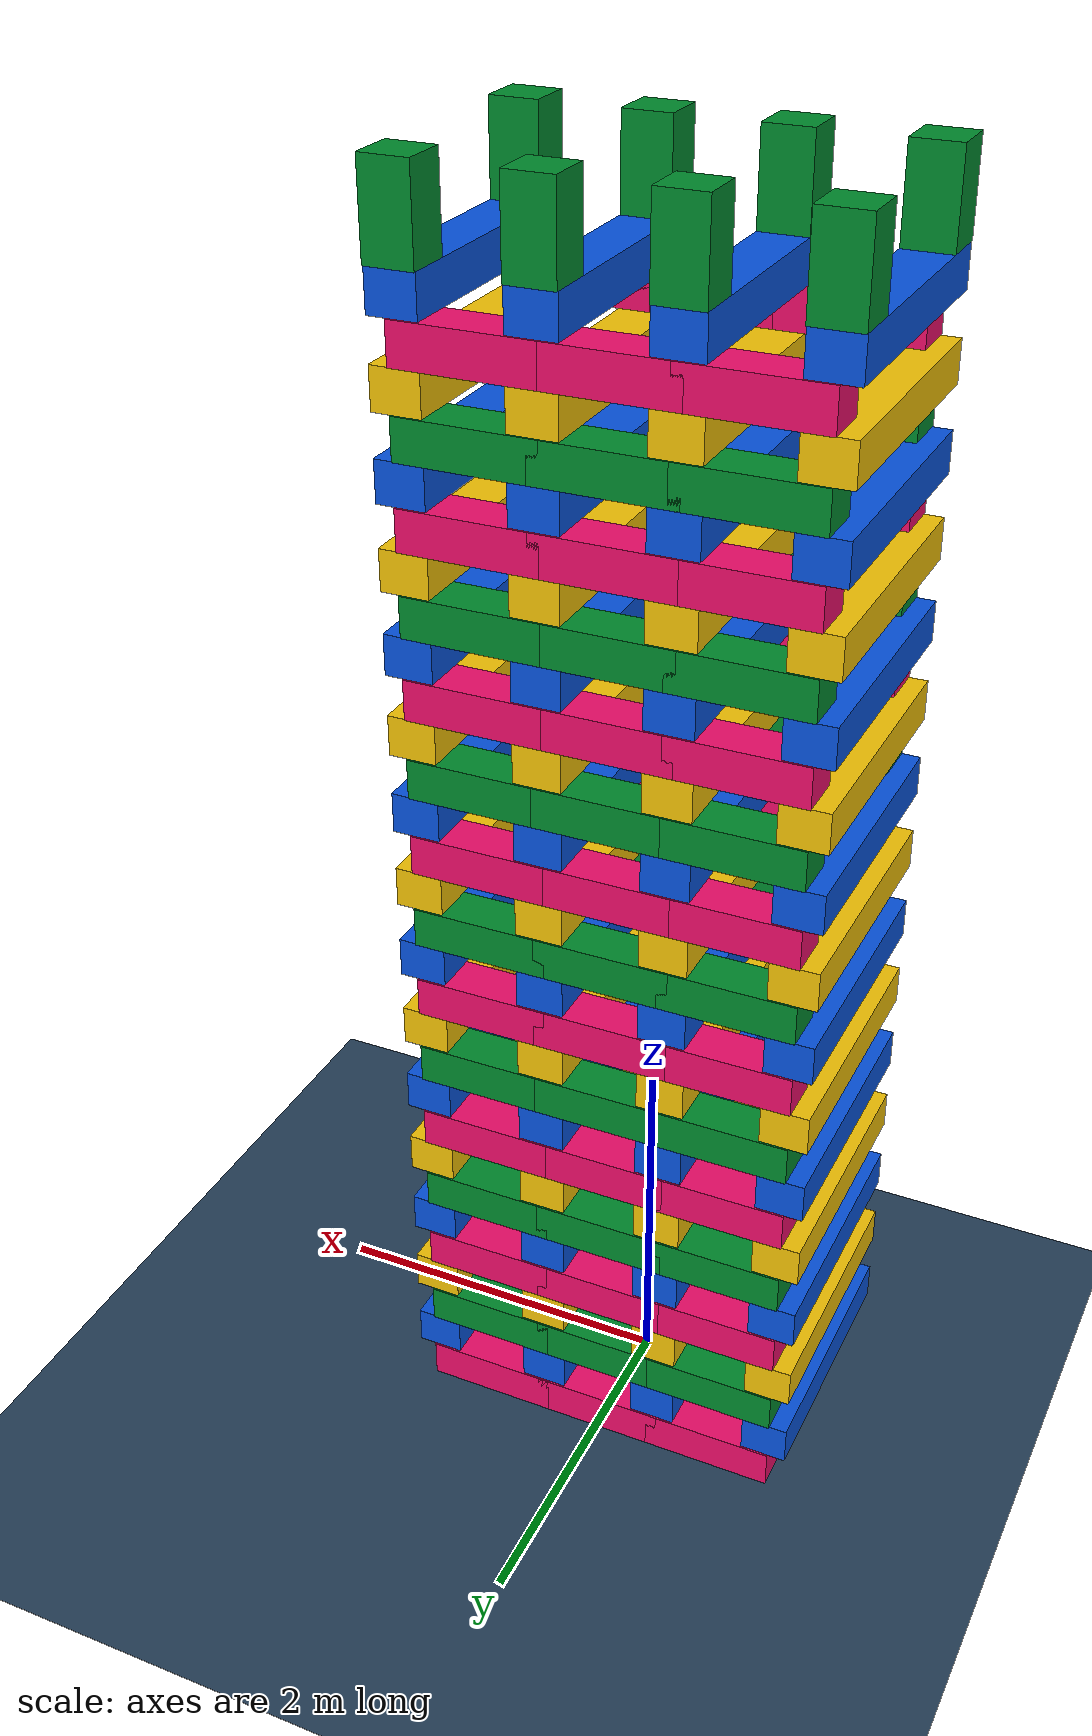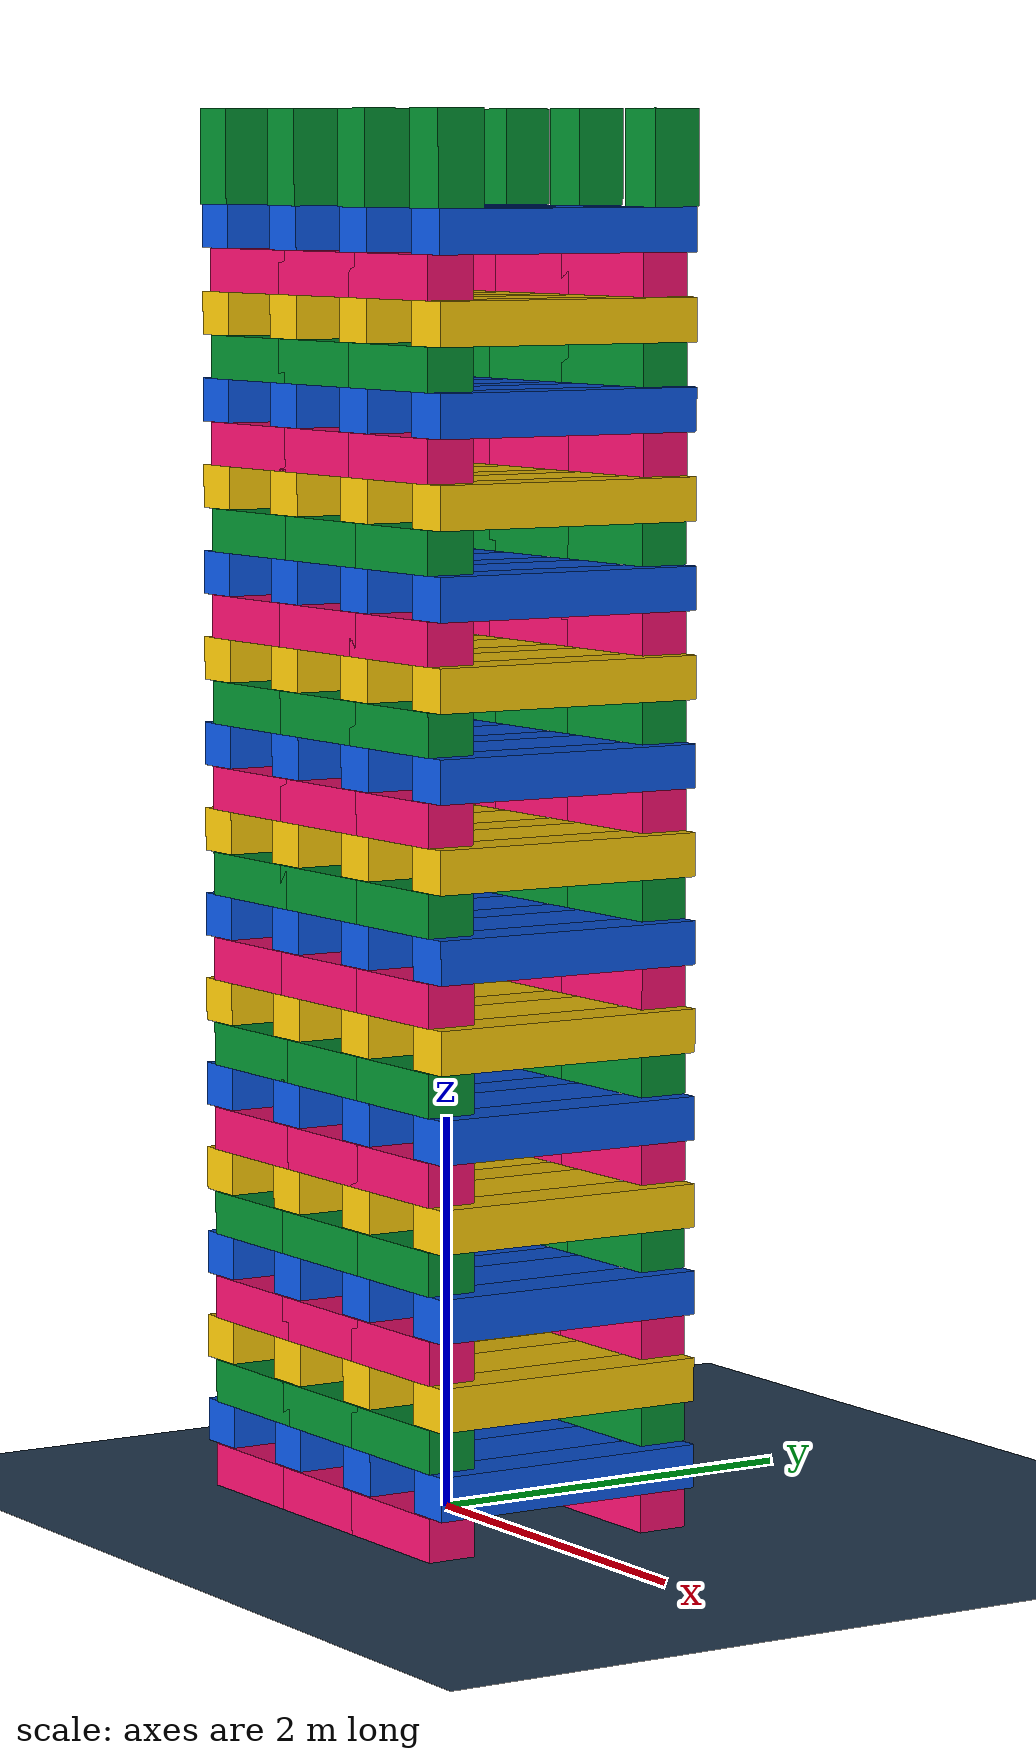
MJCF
<mujoco>
  <visual>
    <headlight diffuse="0.7 0.7 0.7" ambient="0.15 0.15 0.15" specular="0 0 0"/>
    <rgba haze="0.12 0.18 0.25 1"/>
    <global azimuth="132" elevation="-16"/>
  </visual>
  <asset>
    <texture type="skybox" builtin="gradient" rgb1="0.3 0.5 0.7" rgb2="0 0 0" width="512" height="3072"/>
    <texture type="2d" name="groundplane" builtin="checker" mark="edge" rgb1="0.2 0.3 0.4" rgb2="0.1 0.2 0.3" markrgb="0.8 0.8 0.8" width="300" height="300"/>
    <material name="groundplane" texture="groundplane" texuniform="true" texrepeat="5 5" reflectance="0.2"/>
  </asset>
  <worldbody>
    <light pos="0 0 1.5" dir="0 0 -1" directional="true"/>
    <geom name="floor" size="0 0 0.05" type="plane" material="groundplane"/>
    <body pos="-0.6800 -0.6200 0.1100" euler="0 0 0">
      <geom type="box" size="0.3700 0.1300 0.1100" rgba="0.940 0.050 0.420 1"/>
      <freejoint/>
    </body>
    <body pos="0.0000 -0.6200 0.1100" euler="0 0 0">
      <geom type="box" size="0.3700 0.1300 0.1100" rgba="0.940 0.050 0.420 1"/>
      <freejoint/>
    </body>
    <body pos="0.6800 -0.6200 0.1100" euler="0 0 0">
      <geom type="box" size="0.3700 0.1300 0.1100" rgba="0.940 0.050 0.420 1"/>
      <freejoint/>
    </body>
    <body pos="-0.6800 0.6200 0.1100" euler="0 0 0">
      <geom type="box" size="0.3700 0.1300 0.1100" rgba="0.940 0.050 0.420 1"/>
      <freejoint/>
    </body>
    <body pos="0.0000 0.6200 0.1100" euler="0 0 0">
      <geom type="box" size="0.3700 0.1300 0.1100" rgba="0.940 0.050 0.420 1"/>
      <freejoint/>
    </body>
    <body pos="0.6800 0.6200 0.1100" euler="0 0 0">
      <geom type="box" size="0.3700 0.1300 0.1100" rgba="0.940 0.050 0.420 1"/>
      <freejoint/>
    </body>
    <body pos="-1.0200 0.0000 0.3300" euler="0 0 0">
      <geom type="box" size="0.1300 0.7400 0.1100" rgba="0.030 0.330 0.880 1"/>
      <freejoint/>
    </body>
    <body pos="-0.3400 0.0000 0.3300" euler="0 0 0">
      <geom type="box" size="0.1300 0.7400 0.1100" rgba="0.030 0.330 0.880 1"/>
      <freejoint/>
    </body>
    <body pos="0.3400 0.0000 0.3300" euler="0 0 0">
      <geom type="box" size="0.1300 0.7400 0.1100" rgba="0.030 0.330 0.880 1"/>
      <freejoint/>
    </body>
    <body pos="1.0200 0.0000 0.3300" euler="0 0 0">
      <geom type="box" size="0.1300 0.7400 0.1100" rgba="0.030 0.330 0.880 1"/>
      <freejoint/>
    </body>
    <body pos="-0.6800 -0.6200 0.5500" euler="0 0 0">
      <geom type="box" size="0.3700 0.1300 0.1100" rgba="0.000 0.550 0.180 1"/>
      <freejoint/>
    </body>
    <body pos="0.0000 -0.6200 0.5500" euler="0 0 0">
      <geom type="box" size="0.3700 0.1300 0.1100" rgba="0.000 0.550 0.180 1"/>
      <freejoint/>
    </body>
    <body pos="0.6800 -0.6200 0.5500" euler="0 0 0">
      <geom type="box" size="0.3700 0.1300 0.1100" rgba="0.000 0.550 0.180 1"/>
      <freejoint/>
    </body>
    <body pos="-0.6800 0.6200 0.5500" euler="0 0 0">
      <geom type="box" size="0.3700 0.1300 0.1100" rgba="0.000 0.550 0.180 1"/>
      <freejoint/>
    </body>
    <body pos="0.0000 0.6200 0.5500" euler="0 0 0">
      <geom type="box" size="0.3700 0.1300 0.1100" rgba="0.000 0.550 0.180 1"/>
      <freejoint/>
    </body>
    <body pos="0.6800 0.6200 0.5500" euler="0 0 0">
      <geom type="box" size="0.3700 0.1300 0.1100" rgba="0.000 0.550 0.180 1"/>
      <freejoint/>
    </body>
    <body pos="-1.0200 0.0000 0.7700" euler="0 0 0">
      <geom type="box" size="0.1300 0.7400 0.1100" rgba="0.960 0.770 0.020 1"/>
      <freejoint/>
    </body>
    <body pos="-0.3400 0.0000 0.7700" euler="0 0 0">
      <geom type="box" size="0.1300 0.7400 0.1100" rgba="0.960 0.770 0.020 1"/>
      <freejoint/>
    </body>
    <body pos="0.3400 0.0000 0.7700" euler="0 0 0">
      <geom type="box" size="0.1300 0.7400 0.1100" rgba="0.960 0.770 0.020 1"/>
      <freejoint/>
    </body>
    <body pos="1.0200 0.0000 0.7700" euler="0 0 0">
      <geom type="box" size="0.1300 0.7400 0.1100" rgba="0.960 0.770 0.020 1"/>
      <freejoint/>
    </body>
    <body pos="-0.6800 -0.6200 0.9900" euler="0 0 0">
      <geom type="box" size="0.3700 0.1300 0.1100" rgba="0.940 0.050 0.420 1"/>
      <freejoint/>
    </body>
    <body pos="0.0000 -0.6200 0.9900" euler="0 0 0">
      <geom type="box" size="0.3700 0.1300 0.1100" rgba="0.940 0.050 0.420 1"/>
      <freejoint/>
    </body>
    <body pos="0.6800 -0.6200 0.9900" euler="0 0 0">
      <geom type="box" size="0.3700 0.1300 0.1100" rgba="0.940 0.050 0.420 1"/>
      <freejoint/>
    </body>
    <body pos="-0.6800 0.6200 0.9900" euler="0 0 0">
      <geom type="box" size="0.3700 0.1300 0.1100" rgba="0.940 0.050 0.420 1"/>
      <freejoint/>
    </body>
    <body pos="0.0000 0.6200 0.9900" euler="0 0 0">
      <geom type="box" size="0.3700 0.1300 0.1100" rgba="0.940 0.050 0.420 1"/>
      <freejoint/>
    </body>
    <body pos="0.6800 0.6200 0.9900" euler="0 0 0">
      <geom type="box" size="0.3700 0.1300 0.1100" rgba="0.940 0.050 0.420 1"/>
      <freejoint/>
    </body>
    <body pos="-1.0200 0.0000 1.2100" euler="0 0 0">
      <geom type="box" size="0.1300 0.7400 0.1100" rgba="0.030 0.330 0.880 1"/>
      <freejoint/>
    </body>
    <body pos="-0.3400 0.0000 1.2100" euler="0 0 0">
      <geom type="box" size="0.1300 0.7400 0.1100" rgba="0.030 0.330 0.880 1"/>
      <freejoint/>
    </body>
    <body pos="0.3400 0.0000 1.2100" euler="0 0 0">
      <geom type="box" size="0.1300 0.7400 0.1100" rgba="0.030 0.330 0.880 1"/>
      <freejoint/>
    </body>
    <body pos="1.0200 0.0000 1.2100" euler="0 0 0">
      <geom type="box" size="0.1300 0.7400 0.1100" rgba="0.030 0.330 0.880 1"/>
      <freejoint/>
    </body>
    <body pos="-0.6800 -0.6200 1.4300" euler="0 0 0">
      <geom type="box" size="0.3700 0.1300 0.1100" rgba="0.000 0.550 0.180 1"/>
      <freejoint/>
    </body>
    <body pos="0.0000 -0.6200 1.4300" euler="0 0 0">
      <geom type="box" size="0.3700 0.1300 0.1100" rgba="0.000 0.550 0.180 1"/>
      <freejoint/>
    </body>
    <body pos="0.6800 -0.6200 1.4300" euler="0 0 0">
      <geom type="box" size="0.3700 0.1300 0.1100" rgba="0.000 0.550 0.180 1"/>
      <freejoint/>
    </body>
    <body pos="-0.6800 0.6200 1.4300" euler="0 0 0">
      <geom type="box" size="0.3700 0.1300 0.1100" rgba="0.000 0.550 0.180 1"/>
      <freejoint/>
    </body>
    <body pos="0.0000 0.6200 1.4300" euler="0 0 0">
      <geom type="box" size="0.3700 0.1300 0.1100" rgba="0.000 0.550 0.180 1"/>
      <freejoint/>
    </body>
    <body pos="0.6800 0.6200 1.4300" euler="0 0 0">
      <geom type="box" size="0.3700 0.1300 0.1100" rgba="0.000 0.550 0.180 1"/>
      <freejoint/>
    </body>
    <body pos="-1.0200 0.0000 1.6500" euler="0 0 0">
      <geom type="box" size="0.1300 0.7400 0.1100" rgba="0.960 0.770 0.020 1"/>
      <freejoint/>
    </body>
    <body pos="-0.3400 0.0000 1.6500" euler="0 0 0">
      <geom type="box" size="0.1300 0.7400 0.1100" rgba="0.960 0.770 0.020 1"/>
      <freejoint/>
    </body>
    <body pos="0.3400 0.0000 1.6500" euler="0 0 0">
      <geom type="box" size="0.1300 0.7400 0.1100" rgba="0.960 0.770 0.020 1"/>
      <freejoint/>
    </body>
    <body pos="1.0200 0.0000 1.6500" euler="0 0 0">
      <geom type="box" size="0.1300 0.7400 0.1100" rgba="0.960 0.770 0.020 1"/>
      <freejoint/>
    </body>
    <body pos="-0.6800 -0.6200 1.8700" euler="0 0 0">
      <geom type="box" size="0.3700 0.1300 0.1100" rgba="0.940 0.050 0.420 1"/>
      <freejoint/>
    </body>
    <body pos="0.0000 -0.6200 1.8700" euler="0 0 0">
      <geom type="box" size="0.3700 0.1300 0.1100" rgba="0.940 0.050 0.420 1"/>
      <freejoint/>
    </body>
    <body pos="0.6800 -0.6200 1.8700" euler="0 0 0">
      <geom type="box" size="0.3700 0.1300 0.1100" rgba="0.940 0.050 0.420 1"/>
      <freejoint/>
    </body>
    <body pos="-0.6800 0.6200 1.8700" euler="0 0 0">
      <geom type="box" size="0.3700 0.1300 0.1100" rgba="0.940 0.050 0.420 1"/>
      <freejoint/>
    </body>
    <body pos="0.0000 0.6200 1.8700" euler="0 0 0">
      <geom type="box" size="0.3700 0.1300 0.1100" rgba="0.940 0.050 0.420 1"/>
      <freejoint/>
    </body>
    <body pos="0.6800 0.6200 1.8700" euler="0 0 0">
      <geom type="box" size="0.3700 0.1300 0.1100" rgba="0.940 0.050 0.420 1"/>
      <freejoint/>
    </body>
    <body pos="-1.0200 0.0000 2.0900" euler="0 0 0">
      <geom type="box" size="0.1300 0.7400 0.1100" rgba="0.030 0.330 0.880 1"/>
      <freejoint/>
    </body>
    <body pos="-0.3400 0.0000 2.0900" euler="0 0 0">
      <geom type="box" size="0.1300 0.7400 0.1100" rgba="0.030 0.330 0.880 1"/>
      <freejoint/>
    </body>
    <body pos="0.3400 0.0000 2.0900" euler="0 0 0">
      <geom type="box" size="0.1300 0.7400 0.1100" rgba="0.030 0.330 0.880 1"/>
      <freejoint/>
    </body>
    <body pos="1.0200 0.0000 2.0900" euler="0 0 0">
      <geom type="box" size="0.1300 0.7400 0.1100" rgba="0.030 0.330 0.880 1"/>
      <freejoint/>
    </body>
    <body pos="-0.6800 -0.6200 2.3100" euler="0 0 0">
      <geom type="box" size="0.3700 0.1300 0.1100" rgba="0.000 0.550 0.180 1"/>
      <freejoint/>
    </body>
    <body pos="0.0000 -0.6200 2.3100" euler="0 0 0">
      <geom type="box" size="0.3700 0.1300 0.1100" rgba="0.000 0.550 0.180 1"/>
      <freejoint/>
    </body>
    <body pos="0.6800 -0.6200 2.3100" euler="0 0 0">
      <geom type="box" size="0.3700 0.1300 0.1100" rgba="0.000 0.550 0.180 1"/>
      <freejoint/>
    </body>
    <body pos="-0.6800 0.6200 2.3100" euler="0 0 0">
      <geom type="box" size="0.3700 0.1300 0.1100" rgba="0.000 0.550 0.180 1"/>
      <freejoint/>
    </body>
    <body pos="0.0000 0.6200 2.3100" euler="0 0 0">
      <geom type="box" size="0.3700 0.1300 0.1100" rgba="0.000 0.550 0.180 1"/>
      <freejoint/>
    </body>
    <body pos="0.6800 0.6200 2.3100" euler="0 0 0">
      <geom type="box" size="0.3700 0.1300 0.1100" rgba="0.000 0.550 0.180 1"/>
      <freejoint/>
    </body>
    <body pos="-1.0200 0.0000 2.5300" euler="0 0 0">
      <geom type="box" size="0.1300 0.7400 0.1100" rgba="0.960 0.770 0.020 1"/>
      <freejoint/>
    </body>
    <body pos="-0.3400 0.0000 2.5300" euler="0 0 0">
      <geom type="box" size="0.1300 0.7400 0.1100" rgba="0.960 0.770 0.020 1"/>
      <freejoint/>
    </body>
    <body pos="0.3400 0.0000 2.5300" euler="0 0 0">
      <geom type="box" size="0.1300 0.7400 0.1100" rgba="0.960 0.770 0.020 1"/>
      <freejoint/>
    </body>
    <body pos="1.0200 0.0000 2.5300" euler="0 0 0">
      <geom type="box" size="0.1300 0.7400 0.1100" rgba="0.960 0.770 0.020 1"/>
      <freejoint/>
    </body>
    <body pos="-0.6800 -0.6200 2.7500" euler="0 0 0">
      <geom type="box" size="0.3700 0.1300 0.1100" rgba="0.940 0.050 0.420 1"/>
      <freejoint/>
    </body>
    <body pos="0.0000 -0.6200 2.7500" euler="0 0 0">
      <geom type="box" size="0.3700 0.1300 0.1100" rgba="0.940 0.050 0.420 1"/>
      <freejoint/>
    </body>
    <body pos="0.6800 -0.6200 2.7500" euler="0 0 0">
      <geom type="box" size="0.3700 0.1300 0.1100" rgba="0.940 0.050 0.420 1"/>
      <freejoint/>
    </body>
    <body pos="-0.6800 0.6200 2.7500" euler="0 0 0">
      <geom type="box" size="0.3700 0.1300 0.1100" rgba="0.940 0.050 0.420 1"/>
      <freejoint/>
    </body>
    <body pos="0.0000 0.6200 2.7500" euler="0 0 0">
      <geom type="box" size="0.3700 0.1300 0.1100" rgba="0.940 0.050 0.420 1"/>
      <freejoint/>
    </body>
    <body pos="0.6800 0.6200 2.7500" euler="0 0 0">
      <geom type="box" size="0.3700 0.1300 0.1100" rgba="0.940 0.050 0.420 1"/>
      <freejoint/>
    </body>
    <body pos="-1.0200 0.0000 2.9700" euler="0 0 0">
      <geom type="box" size="0.1300 0.7400 0.1100" rgba="0.030 0.330 0.880 1"/>
      <freejoint/>
    </body>
    <body pos="-0.3400 0.0000 2.9700" euler="0 0 0">
      <geom type="box" size="0.1300 0.7400 0.1100" rgba="0.030 0.330 0.880 1"/>
      <freejoint/>
    </body>
    <body pos="0.3400 0.0000 2.9700" euler="0 0 0">
      <geom type="box" size="0.1300 0.7400 0.1100" rgba="0.030 0.330 0.880 1"/>
      <freejoint/>
    </body>
    <body pos="1.0200 0.0000 2.9700" euler="0 0 0">
      <geom type="box" size="0.1300 0.7400 0.1100" rgba="0.030 0.330 0.880 1"/>
      <freejoint/>
    </body>
    <body pos="-0.6800 -0.6200 3.1900" euler="0 0 0">
      <geom type="box" size="0.3700 0.1300 0.1100" rgba="0.000 0.550 0.180 1"/>
      <freejoint/>
    </body>
    <body pos="0.0000 -0.6200 3.1900" euler="0 0 0">
      <geom type="box" size="0.3700 0.1300 0.1100" rgba="0.000 0.550 0.180 1"/>
      <freejoint/>
    </body>
    <body pos="0.6800 -0.6200 3.1900" euler="0 0 0">
      <geom type="box" size="0.3700 0.1300 0.1100" rgba="0.000 0.550 0.180 1"/>
      <freejoint/>
    </body>
    <body pos="-0.6800 0.6200 3.1900" euler="0 0 0">
      <geom type="box" size="0.3700 0.1300 0.1100" rgba="0.000 0.550 0.180 1"/>
      <freejoint/>
    </body>
    <body pos="0.0000 0.6200 3.1900" euler="0 0 0">
      <geom type="box" size="0.3700 0.1300 0.1100" rgba="0.000 0.550 0.180 1"/>
      <freejoint/>
    </body>
    <body pos="0.6800 0.6200 3.1900" euler="0 0 0">
      <geom type="box" size="0.3700 0.1300 0.1100" rgba="0.000 0.550 0.180 1"/>
      <freejoint/>
    </body>
    <body pos="-1.0200 0.0000 3.4100" euler="0 0 0">
      <geom type="box" size="0.1300 0.7400 0.1100" rgba="0.960 0.770 0.020 1"/>
      <freejoint/>
    </body>
    <body pos="-0.3400 0.0000 3.4100" euler="0 0 0">
      <geom type="box" size="0.1300 0.7400 0.1100" rgba="0.960 0.770 0.020 1"/>
      <freejoint/>
    </body>
    <body pos="0.3400 0.0000 3.4100" euler="0 0 0">
      <geom type="box" size="0.1300 0.7400 0.1100" rgba="0.960 0.770 0.020 1"/>
      <freejoint/>
    </body>
    <body pos="1.0200 0.0000 3.4100" euler="0 0 0">
      <geom type="box" size="0.1300 0.7400 0.1100" rgba="0.960 0.770 0.020 1"/>
      <freejoint/>
    </body>
    <body pos="-0.6800 -0.6200 3.6300" euler="0 0 0">
      <geom type="box" size="0.3700 0.1300 0.1100" rgba="0.940 0.050 0.420 1"/>
      <freejoint/>
    </body>
    <body pos="0.0000 -0.6200 3.6300" euler="0 0 0">
      <geom type="box" size="0.3700 0.1300 0.1100" rgba="0.940 0.050 0.420 1"/>
      <freejoint/>
    </body>
    <body pos="0.6800 -0.6200 3.6300" euler="0 0 0">
      <geom type="box" size="0.3700 0.1300 0.1100" rgba="0.940 0.050 0.420 1"/>
      <freejoint/>
    </body>
    <body pos="-0.6800 0.6200 3.6300" euler="0 0 0">
      <geom type="box" size="0.3700 0.1300 0.1100" rgba="0.940 0.050 0.420 1"/>
      <freejoint/>
    </body>
    <body pos="0.0000 0.6200 3.6300" euler="0 0 0">
      <geom type="box" size="0.3700 0.1300 0.1100" rgba="0.940 0.050 0.420 1"/>
      <freejoint/>
    </body>
    <body pos="0.6800 0.6200 3.6300" euler="0 0 0">
      <geom type="box" size="0.3700 0.1300 0.1100" rgba="0.940 0.050 0.420 1"/>
      <freejoint/>
    </body>
    <body pos="-1.0200 0.0000 3.8500" euler="0 0 0">
      <geom type="box" size="0.1300 0.7400 0.1100" rgba="0.030 0.330 0.880 1"/>
      <freejoint/>
    </body>
    <body pos="-0.3400 0.0000 3.8500" euler="0 0 0">
      <geom type="box" size="0.1300 0.7400 0.1100" rgba="0.030 0.330 0.880 1"/>
      <freejoint/>
    </body>
    <body pos="0.3400 0.0000 3.8500" euler="0 0 0">
      <geom type="box" size="0.1300 0.7400 0.1100" rgba="0.030 0.330 0.880 1"/>
      <freejoint/>
    </body>
    <body pos="1.0200 0.0000 3.8500" euler="0 0 0">
      <geom type="box" size="0.1300 0.7400 0.1100" rgba="0.030 0.330 0.880 1"/>
      <freejoint/>
    </body>
    <body pos="-0.6800 -0.6200 4.0700" euler="0 0 0">
      <geom type="box" size="0.3700 0.1300 0.1100" rgba="0.000 0.550 0.180 1"/>
      <freejoint/>
    </body>
    <body pos="0.0000 -0.6200 4.0700" euler="0 0 0">
      <geom type="box" size="0.3700 0.1300 0.1100" rgba="0.000 0.550 0.180 1"/>
      <freejoint/>
    </body>
    <body pos="0.6800 -0.6200 4.0700" euler="0 0 0">
      <geom type="box" size="0.3700 0.1300 0.1100" rgba="0.000 0.550 0.180 1"/>
      <freejoint/>
    </body>
    <body pos="-0.6800 0.6200 4.0700" euler="0 0 0">
      <geom type="box" size="0.3700 0.1300 0.1100" rgba="0.000 0.550 0.180 1"/>
      <freejoint/>
    </body>
    <body pos="0.0000 0.6200 4.0700" euler="0 0 0">
      <geom type="box" size="0.3700 0.1300 0.1100" rgba="0.000 0.550 0.180 1"/>
      <freejoint/>
    </body>
    <body pos="0.6800 0.6200 4.0700" euler="0 0 0">
      <geom type="box" size="0.3700 0.1300 0.1100" rgba="0.000 0.550 0.180 1"/>
      <freejoint/>
    </body>
    <body pos="-1.0200 0.0000 4.2900" euler="0 0 0">
      <geom type="box" size="0.1300 0.7400 0.1100" rgba="0.960 0.770 0.020 1"/>
      <freejoint/>
    </body>
    <body pos="-0.3400 0.0000 4.2900" euler="0 0 0">
      <geom type="box" size="0.1300 0.7400 0.1100" rgba="0.960 0.770 0.020 1"/>
      <freejoint/>
    </body>
    <body pos="0.3400 0.0000 4.2900" euler="0 0 0">
      <geom type="box" size="0.1300 0.7400 0.1100" rgba="0.960 0.770 0.020 1"/>
      <freejoint/>
    </body>
    <body pos="1.0200 0.0000 4.2900" euler="0 0 0">
      <geom type="box" size="0.1300 0.7400 0.1100" rgba="0.960 0.770 0.020 1"/>
      <freejoint/>
    </body>
    <body pos="-0.6800 -0.6200 4.5100" euler="0 0 0">
      <geom type="box" size="0.3700 0.1300 0.1100" rgba="0.940 0.050 0.420 1"/>
      <freejoint/>
    </body>
    <body pos="0.0000 -0.6200 4.5100" euler="0 0 0">
      <geom type="box" size="0.3700 0.1300 0.1100" rgba="0.940 0.050 0.420 1"/>
      <freejoint/>
    </body>
    <body pos="0.6800 -0.6200 4.5100" euler="0 0 0">
      <geom type="box" size="0.3700 0.1300 0.1100" rgba="0.940 0.050 0.420 1"/>
      <freejoint/>
    </body>
    <body pos="-0.6800 0.6200 4.5100" euler="0 0 0">
      <geom type="box" size="0.3700 0.1300 0.1100" rgba="0.940 0.050 0.420 1"/>
      <freejoint/>
    </body>
    <body pos="0.0000 0.6200 4.5100" euler="0 0 0">
      <geom type="box" size="0.3700 0.1300 0.1100" rgba="0.940 0.050 0.420 1"/>
      <freejoint/>
    </body>
    <body pos="0.6800 0.6200 4.5100" euler="0 0 0">
      <geom type="box" size="0.3700 0.1300 0.1100" rgba="0.940 0.050 0.420 1"/>
      <freejoint/>
    </body>
    <body pos="-1.0200 0.0000 4.7300" euler="0 0 0">
      <geom type="box" size="0.1300 0.7400 0.1100" rgba="0.030 0.330 0.880 1"/>
      <freejoint/>
    </body>
    <body pos="-0.3400 0.0000 4.7300" euler="0 0 0">
      <geom type="box" size="0.1300 0.7400 0.1100" rgba="0.030 0.330 0.880 1"/>
      <freejoint/>
    </body>
    <body pos="0.3400 0.0000 4.7300" euler="0 0 0">
      <geom type="box" size="0.1300 0.7400 0.1100" rgba="0.030 0.330 0.880 1"/>
      <freejoint/>
    </body>
    <body pos="1.0200 0.0000 4.7300" euler="0 0 0">
      <geom type="box" size="0.1300 0.7400 0.1100" rgba="0.030 0.330 0.880 1"/>
      <freejoint/>
    </body>
    <body pos="-0.6800 -0.6200 4.9500" euler="0 0 0">
      <geom type="box" size="0.3700 0.1300 0.1100" rgba="0.000 0.550 0.180 1"/>
      <freejoint/>
    </body>
    <body pos="0.0000 -0.6200 4.9500" euler="0 0 0">
      <geom type="box" size="0.3700 0.1300 0.1100" rgba="0.000 0.550 0.180 1"/>
      <freejoint/>
    </body>
    <body pos="0.6800 -0.6200 4.9500" euler="0 0 0">
      <geom type="box" size="0.3700 0.1300 0.1100" rgba="0.000 0.550 0.180 1"/>
      <freejoint/>
    </body>
    <body pos="-0.6800 0.6200 4.9500" euler="0 0 0">
      <geom type="box" size="0.3700 0.1300 0.1100" rgba="0.000 0.550 0.180 1"/>
      <freejoint/>
    </body>
    <body pos="0.0000 0.6200 4.9500" euler="0 0 0">
      <geom type="box" size="0.3700 0.1300 0.1100" rgba="0.000 0.550 0.180 1"/>
      <freejoint/>
    </body>
    <body pos="0.6800 0.6200 4.9500" euler="0 0 0">
      <geom type="box" size="0.3700 0.1300 0.1100" rgba="0.000 0.550 0.180 1"/>
      <freejoint/>
    </body>
    <body pos="-1.0200 0.0000 5.1700" euler="0 0 0">
      <geom type="box" size="0.1300 0.7400 0.1100" rgba="0.960 0.770 0.020 1"/>
      <freejoint/>
    </body>
    <body pos="-0.3400 0.0000 5.1700" euler="0 0 0">
      <geom type="box" size="0.1300 0.7400 0.1100" rgba="0.960 0.770 0.020 1"/>
      <freejoint/>
    </body>
    <body pos="0.3400 0.0000 5.1700" euler="0 0 0">
      <geom type="box" size="0.1300 0.7400 0.1100" rgba="0.960 0.770 0.020 1"/>
      <freejoint/>
    </body>
    <body pos="1.0200 0.0000 5.1700" euler="0 0 0">
      <geom type="box" size="0.1300 0.7400 0.1100" rgba="0.960 0.770 0.020 1"/>
      <freejoint/>
    </body>
    <body pos="-0.6800 -0.6200 5.3900" euler="0 0 0">
      <geom type="box" size="0.3700 0.1300 0.1100" rgba="0.940 0.050 0.420 1"/>
      <freejoint/>
    </body>
    <body pos="0.0000 -0.6200 5.3900" euler="0 0 0">
      <geom type="box" size="0.3700 0.1300 0.1100" rgba="0.940 0.050 0.420 1"/>
      <freejoint/>
    </body>
    <body pos="0.6800 -0.6200 5.3900" euler="0 0 0">
      <geom type="box" size="0.3700 0.1300 0.1100" rgba="0.940 0.050 0.420 1"/>
      <freejoint/>
    </body>
    <body pos="-0.6800 0.6200 5.3900" euler="0 0 0">
      <geom type="box" size="0.3700 0.1300 0.1100" rgba="0.940 0.050 0.420 1"/>
      <freejoint/>
    </body>
    <body pos="0.0000 0.6200 5.3900" euler="0 0 0">
      <geom type="box" size="0.3700 0.1300 0.1100" rgba="0.940 0.050 0.420 1"/>
      <freejoint/>
    </body>
    <body pos="0.6800 0.6200 5.3900" euler="0 0 0">
      <geom type="box" size="0.3700 0.1300 0.1100" rgba="0.940 0.050 0.420 1"/>
      <freejoint/>
    </body>
    <body pos="-1.0200 0.0000 5.6100" euler="0 0 0">
      <geom type="box" size="0.1300 0.7400 0.1100" rgba="0.030 0.330 0.880 1"/>
      <freejoint/>
    </body>
    <body pos="-0.3400 0.0000 5.6100" euler="0 0 0">
      <geom type="box" size="0.1300 0.7400 0.1100" rgba="0.030 0.330 0.880 1"/>
      <freejoint/>
    </body>
    <body pos="0.3400 0.0000 5.6100" euler="0 0 0">
      <geom type="box" size="0.1300 0.7400 0.1100" rgba="0.030 0.330 0.880 1"/>
      <freejoint/>
    </body>
    <body pos="1.0200 0.0000 5.6100" euler="0 0 0">
      <geom type="box" size="0.1300 0.7400 0.1100" rgba="0.030 0.330 0.880 1"/>
      <freejoint/>
    </body>
    <body pos="-0.6800 -0.6200 5.8300" euler="0 0 0">
      <geom type="box" size="0.3700 0.1300 0.1100" rgba="0.000 0.550 0.180 1"/>
      <freejoint/>
    </body>
    <body pos="0.0000 -0.6200 5.8300" euler="0 0 0">
      <geom type="box" size="0.3700 0.1300 0.1100" rgba="0.000 0.550 0.180 1"/>
      <freejoint/>
    </body>
    <body pos="0.6800 -0.6200 5.8300" euler="0 0 0">
      <geom type="box" size="0.3700 0.1300 0.1100" rgba="0.000 0.550 0.180 1"/>
      <freejoint/>
    </body>
    <body pos="-0.6800 0.6200 5.8300" euler="0 0 0">
      <geom type="box" size="0.3700 0.1300 0.1100" rgba="0.000 0.550 0.180 1"/>
      <freejoint/>
    </body>
    <body pos="0.0000 0.6200 5.8300" euler="0 0 0">
      <geom type="box" size="0.3700 0.1300 0.1100" rgba="0.000 0.550 0.180 1"/>
      <freejoint/>
    </body>
    <body pos="0.6800 0.6200 5.8300" euler="0 0 0">
      <geom type="box" size="0.3700 0.1300 0.1100" rgba="0.000 0.550 0.180 1"/>
      <freejoint/>
    </body>
    <body pos="-1.0200 0.0000 6.0500" euler="0 0 0">
      <geom type="box" size="0.1300 0.7400 0.1100" rgba="0.960 0.770 0.020 1"/>
      <freejoint/>
    </body>
    <body pos="-0.3400 0.0000 6.0500" euler="0 0 0">
      <geom type="box" size="0.1300 0.7400 0.1100" rgba="0.960 0.770 0.020 1"/>
      <freejoint/>
    </body>
    <body pos="0.3400 0.0000 6.0500" euler="0 0 0">
      <geom type="box" size="0.1300 0.7400 0.1100" rgba="0.960 0.770 0.020 1"/>
      <freejoint/>
    </body>
    <body pos="1.0200 0.0000 6.0500" euler="0 0 0">
      <geom type="box" size="0.1300 0.7400 0.1100" rgba="0.960 0.770 0.020 1"/>
      <freejoint/>
    </body>
    <body pos="-0.6800 -0.6200 6.2700" euler="0 0 0">
      <geom type="box" size="0.3700 0.1300 0.1100" rgba="0.940 0.050 0.420 1"/>
      <freejoint/>
    </body>
    <body pos="0.0000 -0.6200 6.2700" euler="0 0 0">
      <geom type="box" size="0.3700 0.1300 0.1100" rgba="0.940 0.050 0.420 1"/>
      <freejoint/>
    </body>
    <body pos="0.6800 -0.6200 6.2700" euler="0 0 0">
      <geom type="box" size="0.3700 0.1300 0.1100" rgba="0.940 0.050 0.420 1"/>
      <freejoint/>
    </body>
    <body pos="-0.6800 0.6200 6.2700" euler="0 0 0">
      <geom type="box" size="0.3700 0.1300 0.1100" rgba="0.940 0.050 0.420 1"/>
      <freejoint/>
    </body>
    <body pos="0.0000 0.6200 6.2700" euler="0 0 0">
      <geom type="box" size="0.3700 0.1300 0.1100" rgba="0.940 0.050 0.420 1"/>
      <freejoint/>
    </body>
    <body pos="0.6800 0.6200 6.2700" euler="0 0 0">
      <geom type="box" size="0.3700 0.1300 0.1100" rgba="0.940 0.050 0.420 1"/>
      <freejoint/>
    </body>
    <body pos="-1.0200 0.0000 6.4900" euler="0 0 0">
      <geom type="box" size="0.1300 0.7400 0.1100" rgba="0.030 0.330 0.880 1"/>
      <freejoint/>
    </body>
    <body pos="-0.3400 0.0000 6.4900" euler="0 0 0">
      <geom type="box" size="0.1300 0.7400 0.1100" rgba="0.030 0.330 0.880 1"/>
      <freejoint/>
    </body>
    <body pos="0.3400 0.0000 6.4900" euler="0 0 0">
      <geom type="box" size="0.1300 0.7400 0.1100" rgba="0.030 0.330 0.880 1"/>
      <freejoint/>
    </body>
    <body pos="1.0200 0.0000 6.4900" euler="0 0 0">
      <geom type="box" size="0.1300 0.7400 0.1100" rgba="0.030 0.330 0.880 1"/>
      <freejoint/>
    </body>
    <body pos="-1.0200 -0.6200 6.8400" euler="0 0 0">
      <geom type="box" size="0.1300 0.1300 0.2400" rgba="0.000 0.550 0.180 1"/>
      <freejoint/>
    </body>
    <body pos="-1.0200 0.6200 6.8400" euler="0 0 0">
      <geom type="box" size="0.1300 0.1300 0.2400" rgba="0.000 0.550 0.180 1"/>
      <freejoint/>
    </body>
    <body pos="-0.3400 -0.6200 6.8400" euler="0 0 0">
      <geom type="box" size="0.1300 0.1300 0.2400" rgba="0.000 0.550 0.180 1"/>
      <freejoint/>
    </body>
    <body pos="-0.3400 0.6200 6.8400" euler="0 0 0">
      <geom type="box" size="0.1300 0.1300 0.2400" rgba="0.000 0.550 0.180 1"/>
      <freejoint/>
    </body>
    <body pos="0.3400 -0.6200 6.8400" euler="0 0 0">
      <geom type="box" size="0.1300 0.1300 0.2400" rgba="0.000 0.550 0.180 1"/>
      <freejoint/>
    </body>
    <body pos="0.3400 0.6200 6.8400" euler="0 0 0">
      <geom type="box" size="0.1300 0.1300 0.2400" rgba="0.000 0.550 0.180 1"/>
      <freejoint/>
    </body>
    <body pos="1.0200 -0.6200 6.8400" euler="0 0 0">
      <geom type="box" size="0.1300 0.1300 0.2400" rgba="0.000 0.550 0.180 1"/>
      <freejoint/>
    </body>
    <body pos="1.0200 0.6200 6.8400" euler="0 0 0">
      <geom type="box" size="0.1300 0.1300 0.2400" rgba="0.000 0.550 0.180 1"/>
      <freejoint/>
    </body>
  </worldbody>
</mujoco>
